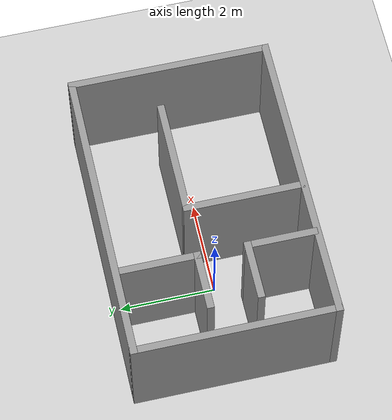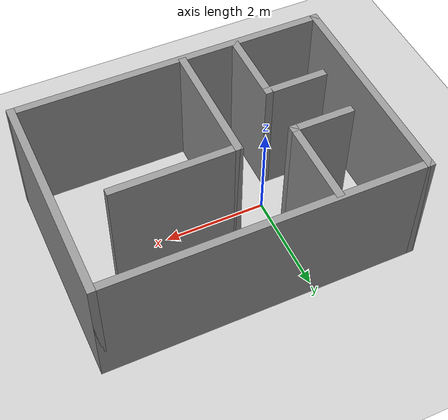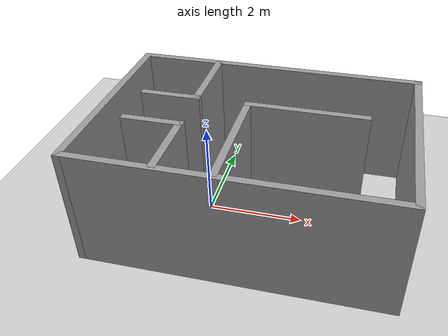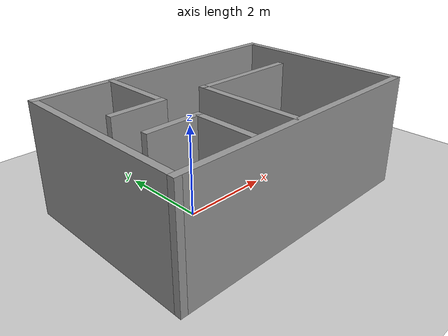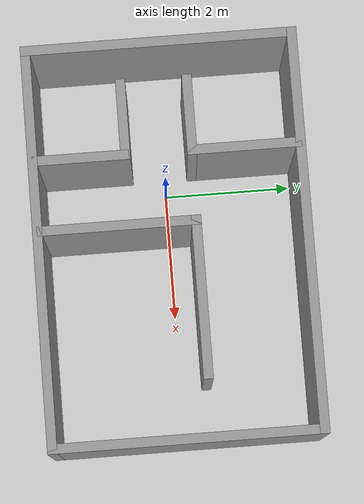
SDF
<sdf version="1.7">
 <world name="default">
  <light name="sun" type="directional">
   <pose>0 0 10 0 -0 0</pose>
   <diffuse>0.8 0.8 0.8 1</diffuse>
   <specular>0.2 0.2 0.2 1</specular>
   <attenuation>
    <range>1000</range>
    <constant>0.9</constant>
    <linear>0.01</linear>
    <quadratic>0.001</quadratic>
   </attenuation>
   <direction>-0.5 0.1 -0.9</direction>
   <spot><inner_angle>0</inner_angle><outer_angle>0</outer_angle><falloff>0</falloff></spot>
  </light>
  <model name="ground_plane">
   <static>1</static>
   <link name="link">
    <collision name="collision">
     <geometry><plane><normal>0 0 1</normal><size>100 100</size></plane></geometry>
     <surface>
      <contact><collide_bitmask>65535</collide_bitmask></contact>
      <friction><ode><mu>100</mu><mu2>50</mu2></ode></friction>
     </surface>
    </collision>
    <visual name="visual">
     <cast_shadows>0</cast_shadows>
     <geometry><plane><normal>0 0 1</normal><size>100 100</size></plane></geometry>
     <material>
      <script><uri>file://media/materials/scripts/gazebo.material</uri><name>Gazebo/Grey</name></script>
     </material>
    </visual>
   </link>
  </model>
  <gravity>0 0 -9.8</gravity>
  <magnetic_field>6e-06 2.3e-05 -4.2e-05</magnetic_field>
  <atmosphere type="adiabatic"/>
  <physics type="ode">
   <max_step_size>0.001</max_step_size>
   <real_time_factor>1</real_time_factor>
   <real_time_update_rate>1000</real_time_update_rate>
  </physics>
  <scene><ambient>0.4 0.4 0.4 1</ambient><background>0.7 0.7 0.7 1</background><shadows>1</shadows></scene>
  <audio><device>default</device></audio>
  <spherical_coordinates>
   <surface_model>EARTH_WGS84</surface_model>
   <latitude_deg>0</latitude_deg>
   <longitude_deg>0</longitude_deg>
   <elevation>0</elevation>
   <heading_deg>0</heading_deg>
  </spherical_coordinates>
  <model name="fishbot_room_1">
   <pose>1.01073 0.723358 0 0 -0 0</pose>
   <link name="Wall_0">
    <collision name="Wall_0_Collision">
     <geometry><box><size>4.25 0.15 2.5</size></box></geometry>
     <pose>0 0 1.25 0 -0 0</pose>
    </collision>
    <visual name="Wall_0_Visual">
     <pose>0 0 1.25 0 -0 0</pose>
     <geometry><box><size>4.25 0.15 2.5</size></box></geometry>
     <material>
      <script><uri>file://media/materials/scripts/gazebo.material</uri><name>Gazebo/Grey</name></script>
      <ambient>1 1 1 1</ambient>
     </material>
     <meta><layer>0</layer></meta>
    </visual>
    <pose>3.05 -0.6825 0 0 -0 -1.5708</pose>
   </link>
   <link name="Wall_1">
    <collision name="Wall_1_Collision">
     <geometry><box><size>6.25 0.15 2.5</size></box></geometry>
     <pose>0 0 1.25 0 -0 0</pose>
    </collision>
    <visual name="Wall_1_Visual">
     <pose>0 0 1.25 0 -0 0</pose>
     <geometry><box><size>6.25 0.15 2.5</size></box></geometry>
     <material>
      <script><uri>file://media/materials/scripts/gazebo.material</uri><name>Gazebo/Grey</name></script>
      <ambient>1 1 1 1</ambient>
     </material>
     <meta><layer>0</layer></meta>
    </visual>
    <pose>-0 -2.7325 0 0 -0 3.14159</pose>
   </link>
   <link name="Wall_10">
    <collision name="Wall_10_Collision">
     <geometry><box><size>1.25 0.15 2.5</size></box></geometry>
     <pose>0 0 1.25 0 -0 0</pose>
    </collision>
    <visual name="Wall_10_Visual">
     <pose>0 0 1.25 0 -0 0</pose>
     <geometry><box><size>1.25 0.15 2.5</size></box></geometry>
     <material>
      <script><uri>file://media/materials/scripts/gazebo.material</uri><name>Gazebo/Grey</name></script>
      <ambient>1 1 1 1</ambient>
     </material>
     <meta><layer>0</layer></meta>
    </visual>
    <pose>-1.88 -1.3125 0 0 -0 3.14159</pose>
   </link>
   <link name="Wall_12">
    <collision name="Wall_12_Collision">
     <geometry><box><size>2.5 0.15 2.5</size></box></geometry>
     <pose>0 0 1.25 0 -0 0</pose>
    </collision>
    <visual name="Wall_12_Visual">
     <pose>0 0 1.25 0 -0 0</pose>
     <geometry><box><size>2.5 0.15 2.5</size></box></geometry>
     <material>
      <script><uri>file://media/materials/scripts/gazebo.material</uri><name>Gazebo/Grey</name></script>
      <ambient>1 1 1 1</ambient>
     </material>
     <meta><layer>0</layer></meta>
    </visual>
    <pose>-0.25 -1.4875 0 0 -0 1.5708</pose>
   </link>
   <link name="Wall_13">
    <collision name="Wall_13_Collision">
     <geometry><box><size>2.5 0.15 2.5</size></box></geometry>
     <pose>0 0 1.25 0 -0 0</pose>
    </collision>
    <visual name="Wall_13_Visual">
     <pose>0 0 1.25 0 -0 0</pose>
     <geometry><box><size>2.5 0.15 2.5</size></box></geometry>
     <material>
      <script><uri>file://media/materials/scripts/gazebo.material</uri><name>Gazebo/Grey</name></script>
      <ambient>1 1 1 1</ambient>
     </material>
     <meta><layer>0</layer></meta>
    </visual>
    <pose>0.925 -0.3125 0 0 -0 0</pose>
   </link>
   <link name="Wall_2">
    <collision name="Wall_2_Collision">
     <geometry><box><size>4.25 0.15 2.5</size></box></geometry>
     <pose>0 0 1.25 0 -0 0</pose>
    </collision>
    <visual name="Wall_2_Visual">
     <pose>0 0 1.25 0 -0 0</pose>
     <geometry><box><size>4.25 0.15 2.5</size></box></geometry>
     <material>
      <script><uri>file://media/materials/scripts/gazebo.material</uri><name>Gazebo/Grey</name></script>
      <ambient>1 1 1 1</ambient>
     </material>
     <meta><layer>0</layer></meta>
    </visual>
    <pose>-3.05 -0.6825 0 0 -0 1.5708</pose>
   </link>
   <link name="Wall_3">
    <collision name="Wall_3_Collision">
     <geometry><box><size>6.25 0.15 2.5</size></box></geometry>
     <pose>0 0 1.25 0 -0 0</pose>
    </collision>
    <visual name="Wall_3_Visual">
     <pose>0 0 1.25 0 -0 0</pose>
     <geometry><box><size>6.25 0.15 2.5</size></box></geometry>
     <material>
      <script><uri>file://media/materials/scripts/gazebo.material</uri><name>Gazebo/Grey</name></script>
      <ambient>1 1 1 1</ambient>
     </material>
     <meta><layer>0</layer></meta>
    </visual>
    <pose>-0 1.3675 0 0 -0 0</pose>
   </link>
   <link name="Wall_5">
    <collision name="Wall_5_Collision">
     <geometry><box><size>1.75 0.15 2.5</size></box></geometry>
     <pose>0 0 1.25 0 -0 0</pose>
    </collision>
    <visual name="Wall_5_Visual">
     <pose>0 0 1.25 0 -0 0</pose>
     <geometry><box><size>1.75 0.15 2.5</size></box></geometry>
     <material>
      <script><uri>file://media/materials/scripts/gazebo.material</uri><name>Gazebo/Grey</name></script>
      <ambient>1 1 1 1</ambient>
     </material>
     <meta><layer>0</layer></meta>
    </visual>
    <pose>-1.33 0.5075 0 0 -0 -1.5708</pose>
   </link>
   <link name="Wall_6">
    <collision name="Wall_6_Collision">
     <geometry><box><size>1.25 0.15 2.5</size></box></geometry>
     <pose>0 0 1.25 0 -0 0</pose>
    </collision>
    <visual name="Wall_6_Visual">
     <pose>0 0 1.25 0 -0 0</pose>
     <geometry><box><size>1.25 0.15 2.5</size></box></geometry>
     <material>
      <script><uri>file://media/materials/scripts/gazebo.material</uri><name>Gazebo/Grey</name></script>
      <ambient>1 1 1 1</ambient>
     </material>
     <meta><layer>0</layer></meta>
    </visual>
    <pose>-1.88 -0.2925 0 0 -0 3.14159</pose>
   </link>
   <link name="Wall_8">
    <collision name="Wall_8_Collision">
     <geometry><box><size>1.5 0.15 2.5</size></box></geometry>
     <pose>0 0 1.25 0 -0 0</pose>
    </collision>
    <visual name="Wall_8_Visual">
     <pose>0 0 1.25 0 -0 0</pose>
     <geometry><box><size>1.5 0.15 2.5</size></box></geometry>
     <material>
      <script><uri>file://media/materials/scripts/gazebo.material</uri><name>Gazebo/Grey</name></script>
      <ambient>1 1 1 1</ambient>
     </material>
     <meta><layer>0</layer></meta>
    </visual>
    <pose>-1.33 -1.9875 0 0 -0 -1.5708</pose>
   </link>
   <static>1</static>
  </model>
 </world>
</sdf>
